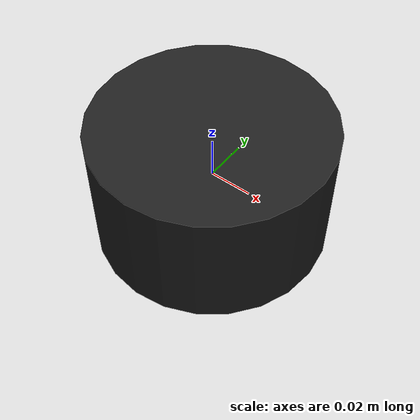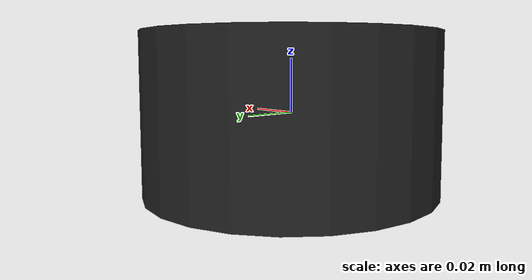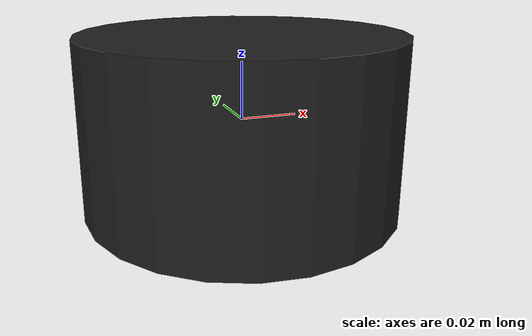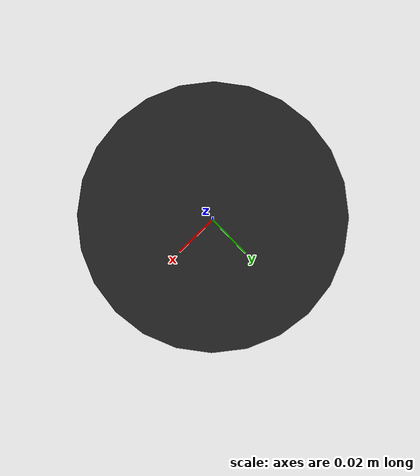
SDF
<?xml version="1.0" encoding="UTF-8"?>
<sdf version="1.11">
  <model name="lidar_mid360">
    <static>false</static>
    <self_collide>false</self_collide>
    <link name="livox_frame">
      <pose>0 0 0 0 0 0</pose>
      <inertial>
        <mass>0.265</mass>
        <inertia>
          <ixx>0.00028</ixx><ixy>0</ixy><ixz>0</ixz>
          <iyy>0.00028</iyy><iyz>0</iyz><izz>0.00040</izz>
        </inertia>
      </inertial>
      <visual name="housing_visual">
        <geometry><cylinder><radius>0.055</radius><length>0.060</length></cylinder></geometry>
        <material><ambient>0.08 0.08 0.08 1</ambient><diffuse>0.12 0.12 0.12 1</diffuse></material>
      </visual>
      <collision name="housing_collision">
        <geometry><cylinder><radius>0.055</radius><length>0.060</length></cylinder></geometry>
      </collision>

      <sensor name="lidar" type="gpu_lidar">
        <pose>0 0 0 0 0 0</pose>
        <topic>/sim/mid360/scan</topic>
        <gz_frame_id>livox_frame</gz_frame_id>
        <always_on>true</always_on>
        <update_rate>10</update_rate>
        <visualize>false</visualize>
        <lidar>
          <scan>
            <horizontal>
              <samples>720</samples><resolution>1</resolution>
              <min_angle>-3.141592653589793</min_angle>
              <max_angle>3.141592653589793</max_angle>
            </horizontal>
            <vertical>
              <samples>28</samples><resolution>1</resolution>
              <min_angle>-0.122173047639603</min_angle>
              <max_angle>0.907571211037051</max_angle>
            </vertical>
          </scan>
          <range><min>0.1</min><max>40.0</max><resolution>0.01</resolution></range>
          <noise><type>gaussian</type><mean>0.0</mean><stddev>0.02</stddev></noise>
        </lidar>
      </sensor>

      <sensor name="mid360_imu" type="imu">
        <pose>0.011 0.02329 -0.04412 0 0 0</pose>
        <topic>/sim/mid360/imu</topic>
        <gz_frame_id>livox_imu_frame</gz_frame_id>
        <always_on>true</always_on>
        <update_rate>200</update_rate>
        <imu>
          <angular_velocity>
            <x><noise type="gaussian"><mean>0.0</mean><stddev>0.001</stddev></noise></x>
            <y><noise type="gaussian"><mean>0.0</mean><stddev>0.001</stddev></noise></y>
            <z><noise type="gaussian"><mean>0.0</mean><stddev>0.001</stddev></noise></z>
          </angular_velocity>
          <linear_acceleration>
            <x><noise type="gaussian"><mean>0.0</mean><stddev>0.01</stddev></noise></x>
            <y><noise type="gaussian"><mean>0.0</mean><stddev>0.01</stddev></noise></y>
            <z><noise type="gaussian"><mean>0.0</mean><stddev>0.01</stddev></noise></z>
          </linear_acceleration>
        </imu>
      </sensor>
    </link>
  </model>
</sdf>
